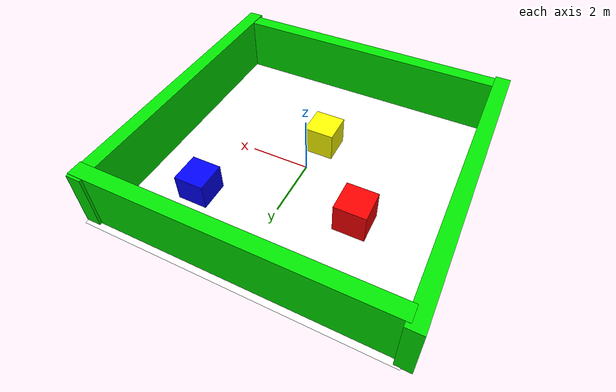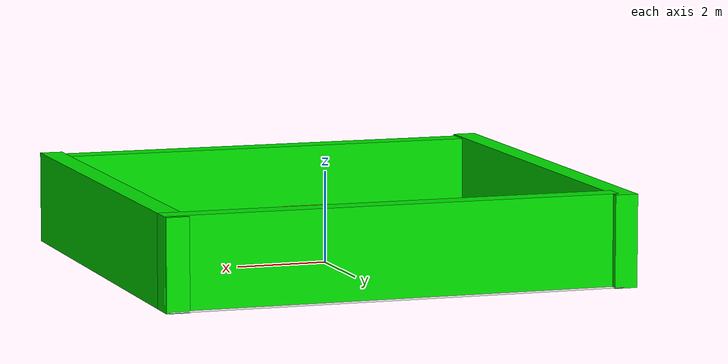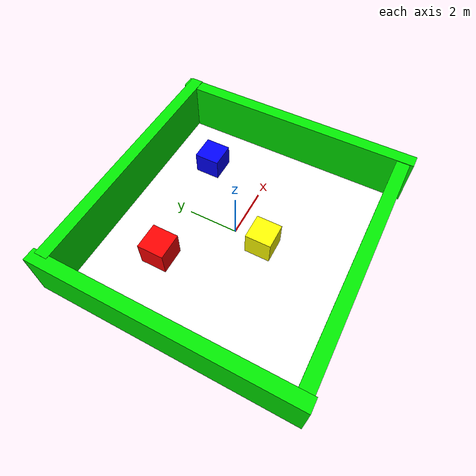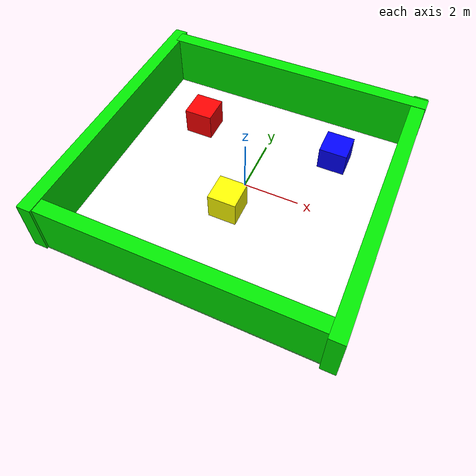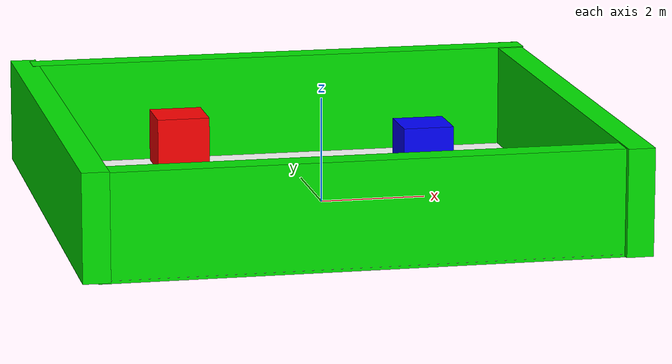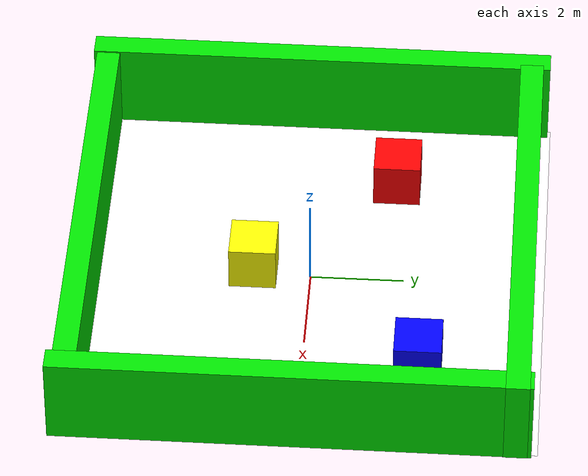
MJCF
<mujoco>
  <worldbody>
    <light diffuse=".5 .5 .5" pos="0 0 3" dir="0 0 -1" />
    <body pos="0 0 0" name="">
      <geom type="plane" size="5 5 1.110223E-16" euler="0 0 0" rgba="200 200 200 1" name="" />
    </body>
    <body pos="-0.09832478 -1.214811 0.510036" name="agent">
      <joint type="free" name="agent_freeJoint" />
      <camera name="agent_1_camera" pos="1 0 0" euler="90 0 0"/>
      <geom type="box" size="0.5 0.5 0.5" euler="0 0 0" rgba="255 255 0 1" name="agent_geom0" />
    </body>
    <body pos="0.06210995 4.539877 0.9658446" name="">
      <geom type="box" size="5 0.25 1" euler="0 0 0" rgba="0 .9 0 1" name="border1" />
    </body>
    <body pos="-0.009183407 -4.742987 0.9291329" name="">
      <geom type="box" size="5 0.25 1" euler="0 0 0" rgba="0 .9 0 1" name="border2" />
    </body>
    <body pos="4.788641 -0.1293259 0.9513283" name="">
      <geom type="box" size="0.25 5 1" euler="0 0 0" rgba="0 .9 0 1" name="border3" />
    </body>
    <body pos="-5.05311 -0.06087518 0.9600735" name="">
      <geom type="box" size="0.25 5 1" euler="0 0 0" rgba="0 .9 0 1" name="border4" />
    </body>
    <body pos="2.546444 2.421941 0.3997998" name="target_1">
      <geom type="box" size="0.5 0.5 0.5" euler="0 0 0" rgba="0 0 255 1" name="target_1_geom0" />
    </body>
    <body pos="-2.440188 1.738849 0.9417777" name="target_2">
      <geom type="box" size="0.5 0.5 0.5" euler="0 0 0" rgba="255 0 0 1" name="target_2_geom0" />
    </body>
  </worldbody>
  <sensor />
</mujoco>
